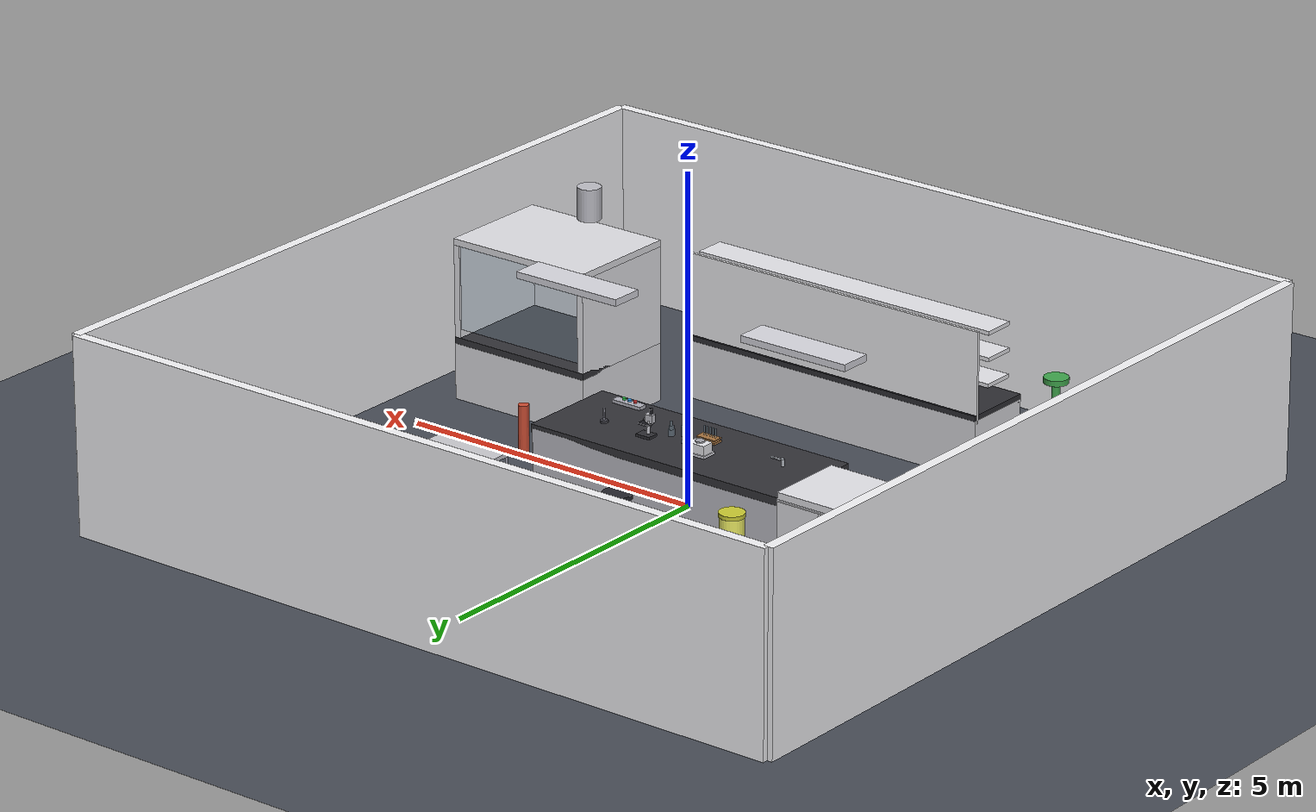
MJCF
<?xml version="1.0" encoding="utf-8"?>
<mujoco model="chemistry_lab_tracer">
  <!-- Tracer base only, no arms -- for driving tests -->
  <include file="../../deps/OpenArm-Combined/Tracer.xml"/>

  <option timestep="0.002" gravity="0 0 -9.81" integrator="implicit"/>
  <size njmax="4000" nconmax="2000"/>
  <visual>
    <headlight ambient="0.35 0.35 0.35" diffuse="0.6 0.6 0.6" specular="0.2 0.2 0.2"/>
    <rgba haze="0.95 0.97 1.0 1"/>
    <quality shadowsize="2048"/>
  </visual>

  <worldbody>
    <!-- Floorremoved--already in robot -->

    <!-- Room boundary (visual walls) -->
    <geom name="wall_n" type="box" pos="0 6 1.5" size="6 0.08 1.5"
          rgba="0.97 0.97 0.98 1" contype="0" conaffinity="0"/>
    <geom name="wall_s" type="box" pos="0 -6 1.5" size="6 0.08 1.5"
          rgba="0.97 0.97 0.98 1" contype="0" conaffinity="0"/>
    <geom name="wall_e" type="box" pos="6 0 1.5" size="0.08 6 1.5"
          rgba="0.97 0.97 0.98 1" contype="0" conaffinity="0"/>
    <geom name="wall_w" type="box" pos="-6 0 1.5" size="0.08 6 1.5"
          rgba="0.97 0.97 0.98 1" contype="0" conaffinity="0"/>

    <!-- Ceiling (visual) -->

    <!-- Overhead lights (visual fixtures) -->
    <body name="light_fixture_1" pos="-2 0 2.88">
      <geom type="box" size="0.9 0.25 0.05" rgba="0.85 0.85 0.88 1" contype="0" conaffinity="0"/>
      <light name="lab_light_1" pos="0 0 -0.05" dir="0 0 -1" directional="true"
             diffuse="1 1 1" specular="0.2 0.2 0.2" castshadow="true"/>
    </body>
    <body name="light_fixture_2" pos="2 0 2.88">
      <geom type="box" size="0.9 0.25 0.05" rgba="0.85 0.85 0.88 1" contype="0" conaffinity="0"/>
      <light name="lab_light_2" pos="0 0 -0.05" dir="0 0 -1" directional="true"
             diffuse="1 1 1" specular="0.2 0.2 0.2" castshadow="true"/>
    </body>

    <!-- Main lab bench -->
    <body name="bench" pos="0 0 0">
      <!-- Bench top -->
      <geom name="bench_top" type="box" pos="0 0 0.9" size="2.2 0.8 0.06"
            rgba="0.20 0.20 0.22 1" friction="1.2 0.01 0.001"/>
      <!-- Bench frame -->
      <geom name="bench_frame_front" type="box" pos="0 0.78 0.45" size="2.18 0.02 0.45"
            rgba="0.75 0.75 0.78 1"/>
      <geom name="bench_frame_back" type="box" pos="0 -0.78 0.45" size="2.18 0.02 0.45"
            rgba="0.75 0.75 0.78 1"/>
      <geom name="bench_frame_left" type="box" pos="-2.18 0 0.45" size="0.02 0.78 0.45"
            rgba="0.75 0.75 0.78 1"/>
      <geom name="bench_frame_right" type="box" pos="2.18 0 0.45" size="0.02 0.78 0.45"
            rgba="0.75 0.75 0.78 1"/>
      <!-- Legs -->
      <geom name="bench_leg_fl" type="box" pos="-2.0 0.7 0.45" size="0.06 0.06 0.45"
            rgba="0.65 0.65 0.68 1"/>
      <geom name="bench_leg_fr" type="box" pos="2.0 0.7 0.45" size="0.06 0.06 0.45"
            rgba="0.65 0.65 0.68 1"/>
      <geom name="bench_leg_bl" type="box" pos="-2.0 -0.7 0.45" size="0.06 0.06 0.45"
            rgba="0.65 0.65 0.68 1"/>
      <geom name="bench_leg_br" type="box" pos="2.0 -0.7 0.45" size="0.06 0.06 0.45"
            rgba="0.65 0.65 0.68 1"/>

      <!-- Sink basin + faucet (integrated on bench) -->
      <geom name="sink_basin_outer" type="box" pos="-1.35 -0.15 0.885" size="0.35 0.25 0.03"
            rgba="0.55 0.57 0.60 1"/>
      <geom name="sink_basin_hole" type="box" pos="-1.35 -0.15 0.87" size="0.30 0.20 0.02"
            rgba="0.18 0.18 0.20 1" contype="0" conaffinity="0"/>
      <geom name="faucet_post" type="cylinder" pos="-1.55 -0.15 0.97" size="0.025 0.10"
            rgba="0.70 0.72 0.75 1"/>
      <geom name="faucet_spout" type="capsule" fromto="-1.55 -0.15 1.05 -1.35 -0.15 1.05"
            size="0.015" rgba="0.70 0.72 0.75 1"/>

      <!-- Gas tap manifold -->
      <geom name="gas_manifold" type="box" pos="1.55 -0.6 0.98" size="0.25 0.07 0.03"
            rgba="0.70 0.70 0.74 1"/>
      <geom name="gas_knob_1" type="cylinder" pos="1.45 -0.62 1.02" size="0.03 0.02"
            rgba="0.85 0.2 0.2 1"/>
      <geom name="gas_knob_2" type="cylinder" pos="1.55 -0.62 1.02" size="0.03 0.02"
            rgba="0.2 0.6 0.9 1"/>
      <geom name="gas_knob_3" type="cylinder" pos="1.65 -0.62 1.02" size="0.03 0.02"
            rgba="0.2 0.8 0.3 1"/>
    </body>

    <!-- Back counter with shelving -->
    <body name="back_counter" pos="0 -3.8 0">
      <geom name="back_counter_top" type="box" pos="0 0 0.92" size="2.6 0.55 0.06"
            rgba="0.18 0.18 0.20 1" friction="1.2 0.01 0.001"/>
      <geom name="back_counter_base" type="box" pos="0 0 0.45" size="2.6 0.55 0.45"
            rgba="0.86 0.86 0.88 1"/>
      <!-- Shelves -->
      <geom name="shelf_1" type="box" pos="0 0 1.35" size="2.6 0.25 0.03"
            rgba="0.90 0.90 0.92 1" contype="0" conaffinity="0"/>
      <geom name="shelf_2" type="box" pos="0 0 1.75" size="2.6 0.25 0.03"
            rgba="0.90 0.90 0.92 1" contype="0" conaffinity="0"/>
      <geom name="shelf_3" type="box" pos="0 0 2.15" size="2.6 0.25 0.03"
            rgba="0.90 0.90 0.92 1" contype="0" conaffinity="0"/>
      <!-- Pegboard -->
      <geom name="pegboard" type="box" pos="0 0.5 1.55" size="2.6 0.02 0.7"
            rgba="0.95 0.95 0.96 1" contype="0" conaffinity="0"/>
    </body>

    <!-- Fume hood -->
    <body name="fume_hood" pos="4.0 -2.0 0">
      <geom name="hood_base" type="box" pos="0 0 0.45" size="1.2 0.9 0.45"
            rgba="0.88 0.88 0.90 1"/>
      <geom name="hood_worktop" type="box" pos="0 0 0.92" size="1.2 0.9 0.05"
            rgba="0.20 0.20 0.22 1"/>
      <geom name="hood_back" type="box" pos="0 -0.85 1.65" size="1.2 0.05 0.75"
            rgba="0.90 0.90 0.92 1" contype="0" conaffinity="0"/>
      <geom name="hood_sides_l" type="box" pos="-1.15 0 1.65" size="0.05 0.9 0.75"
            rgba="0.90 0.90 0.92 1" contype="0" conaffinity="0"/>
      <geom name="hood_sides_r" type="box" pos="1.15 0 1.65" size="0.05 0.9 0.75"
            rgba="0.90 0.90 0.92 1" contype="0" conaffinity="0"/>
      <geom name="hood_top" type="box" pos="0 0 2.45" size="1.2 0.9 0.05"
            rgba="0.88 0.88 0.90 1" contype="0" conaffinity="0"/>
      <!-- Front sash (glass) -->
      <geom name="hood_sash" type="box" pos="0 0.85 1.75" size="1.18 0.02 0.65"
            rgba="0.70 0.85 0.95 0.25" contype="0" conaffinity="0"/>
      <!-- Duct -->
      <geom name="hood_duct" type="cylinder" pos="0 -0.75 2.85" size="0.18 0.25"
            rgba="0.75 0.75 0.78 1" contype="0" conaffinity="0"/>
    </body>

    <!-- Emergency shower / eyewash station -->
    <body name="safety_station" pos="-4.5 -2.5 0">
      <geom name="safety_post" type="cylinder" pos="0 0 1.1" size="0.06 1.1"
            rgba="0.25 0.65 0.30 1"/>
      <geom name="shower_head" type="cylinder" pos="0 0 2.25" size="0.18 0.04"
            rgba="0.25 0.65 0.30 1" contype="0" conaffinity="0"/>
      <geom name="eyewash_bowl" type="cylinder" pos="0 0 1.0" size="0.20 0.05"
            rgba="0.25 0.65 0.30 1"/>
      <geom name="eyewash_nozzle_l" type="sphere" pos="-0.06 0 1.08" size="0.03"
            rgba="0.10 0.40 0.85 1" contype="0" conaffinity="0"/>
      <geom name="eyewash_nozzle_r" type="sphere" pos="0.06 0 1.08" size="0.03"
            rgba="0.10 0.40 0.85 1" contype="0" conaffinity="0"/>
      <geom name="pull_handle" type="capsule" fromto="0 0.15 1.65 0 0.15 1.25"
            size="0.02" rgba="0.85 0.85 0.10 1" contype="0" conaffinity="0"/>
    </body>

    <!-- Fire extinguisher (movable) -->
    <body name="fire_extinguisher" pos="-4.2 -1.6 0.15">
      <freejoint/>
      <geom name="ext_body" type="cylinder" pos="0 0 0.25" size="0.08 0.25"
            rgba="0.85 0.10 0.10 1" friction="0.9 0.01 0.001" density="700"/>
      <geom name="ext_neck" type="cylinder" pos="0 0 0.53" size="0.04 0.05"
            rgba="0.75 0.75 0.78 1" density="700"/>
      <geom name="ext_handle" type="box" pos="0 0.05 0.60" size="0.08 0.02 0.02"
            rgba="0.10 0.10 0.10 1" density="500"/>
      <geom name="ext_hose" type="capsule" fromto="0.05 0.0 0.58 0.16 0.08 0.48"
            size="0.015" rgba="0.10 0.10 0.10 1" density="400"/>
    </body>

    <!-- Lab stool (movable) -->
    <body name="lab_stool" pos="0.0 1.6 0.25">
      <freejoint/>
      <geom name="stool_seat" type="cylinder" pos="0 0 0.45" size="0.22 0.04"
            rgba="0.15 0.15 0.18 1" density="500"/>
      <geom name="stool_post" type="cylinder" pos="0 0 0.23" size="0.03 0.23"
            rgba="0.65 0.65 0.68 1" density="700"/>
      <geom name="stool_base_1" type="capsule" fromto="0 0 0.05 0.25 0 0.05"
            size="0.02" rgba="0.65 0.65 0.68 1" density="700"/>
      <geom name="stool_base_2" type="capsule" fromto="0 0 0.05 -0.25 0 0.05"
            size="0.02" rgba="0.65 0.65 0.68 1" density="700"/>
      <geom name="stool_base_3" type="capsule" fromto="0 0 0.05 0 0.25 0.05"
            size="0.02" rgba="0.65 0.65 0.68 1" density="700"/>
      <geom name="stool_base_4" type="capsule" fromto="0 0 0.05 0 -0.25 0.05"
            size="0.02" rgba="0.65 0.65 0.68 1" density="700"/>
    </body>

    <!-- Microscope (movable) -->
    <body name="microscope" pos="0.6 0.2 0.98">
      <freejoint/>
      <geom name="micro_base" type="box" pos="0 0 0.02" size="0.12 0.09 0.02"
            rgba="0.18 0.18 0.20 1" density="800"/>
      <geom name="micro_arm" type="capsule" fromto="-0.02 -0.02 0.04 -0.02 -0.04 0.22"
            size="0.025" rgba="0.75 0.75 0.78 1" density="800"/>
      <geom name="micro_body" type="box" pos="-0.02 -0.06 0.26" size="0.06 0.04 0.06"
            rgba="0.75 0.75 0.78 1" density="800"/>
      <geom name="micro_head" type="cylinder" pos="-0.02 -0.08 0.34" size="0.03 0.06"
            rgba="0.10 0.10 0.12 1" density="700"/>
      <geom name="micro_stage" type="box" pos="0.03 -0.02 0.18" size="0.09 0.06 0.01"
            rgba="0.10 0.10 0.12 1" density="700"/>
      <geom name="micro_knob" type="sphere" pos="0.08 -0.06 0.22" size="0.02"
            rgba="0.20 0.20 0.22 1" density="500"/>
    </body>

    <!-- Balance scale (movable) -->
    <body name="balance_scale" pos="-0.4 0.25 0.98">
      <freejoint/>
      <geom name="scale_base" type="box" pos="0 0 0.02" size="0.16 0.12 0.02"
            rgba="0.85 0.85 0.88 1" density="900"/>
      <geom name="scale_body" type="box" pos="0 0 0.10" size="0.14 0.10 0.08"
            rgba="0.92 0.92 0.94 1" density="900"/>
      <geom name="scale_pan" type="cylinder" pos="0 0 0.20" size="0.07 0.01"
            rgba="0.65 0.65 0.68 1" density="700"/>
      <geom name="scale_screen" type="box" pos="0.06 0.0 0.14" size="0.03 0.05 0.02"
            rgba="0.10 0.15 0.20 1" density="700"/>
    </body>

    <!-- Test tube rack (movable) -->
    <body name="test_tube_rack" pos="-0.2 -0.2 0.98">
      <freejoint/>
      <geom name="rack_base" type="box" pos="0 0 0.015" size="0.16 0.08 0.015"
            rgba="0.65 0.45 0.25 1" density="700"/>
      <geom name="rack_top" type="box" pos="0 0 0.06" size="0.16 0.08 0.01"
            rgba="0.65 0.45 0.25 1" density="700"/>
      <!-- Test tubes (thin cylinders) -->
      <geom name="tube_1" type="cylinder" pos="-0.10 -0.03 0.13" size="0.012 0.07"
            rgba="0.70 0.90 1.00 0.25" density="400"/>
      <geom name="tube_2" type="cylinder" pos="-0.05 -0.03 0.13" size="0.012 0.07"
            rgba="0.70 0.90 1.00 0.25" density="400"/>
      <geom name="tube_3" type="cylinder" pos="0.00 -0.03 0.13" size="0.012 0.07"
            rgba="0.70 0.90 1.00 0.25" density="400"/>
      <geom name="tube_4" type="cylinder" pos="0.05 -0.03 0.13" size="0.012 0.07"
            rgba="0.70 0.90 1.00 0.25" density="400"/>
      <geom name="tube_5" type="cylinder" pos="0.10 -0.03 0.13" size="0.012 0.07"
            rgba="0.70 0.90 1.00 0.25" density="400"/>
      <!-- Colored liquid (visual-only inserts) -->
      <geom name="tube_1_liquid" type="cylinder" pos="-0.10 -0.03 0.105" size="0.010 0.035"
            rgba="0.20 0.60 0.95 0.55" contype="0" conaffinity="0"/>
      <geom name="tube_2_liquid" type="cylinder" pos="-0.05 -0.03 0.095" size="0.010 0.025"
            rgba="0.95 0.35 0.20 0.55" contype="0" conaffinity="0"/>
      <geom name="tube_3_liquid" type="cylinder" pos="0.00 -0.03 0.11" size="0.010 0.04"
            rgba="0.25 0.85 0.35 0.55" contype="0" conaffinity="0"/>
    </body>

    <!-- Beaker (movable) -->
    <body name="beaker" pos="0.2 -0.15 0.98">
      <freejoint/>
      <geom name="beaker_glass" type="cylinder" pos="0 0 0.07" size="0.045 0.07"
            rgba="0.70 0.90 1.00 0.25" density="400" friction="0.6 0.01 0.001"/>
      <geom name="beaker_liquid" type="cylinder" pos="0 0 0.045" size="0.043 0.04"
            rgba="0.15 0.55 0.95 0.6" contype="0" conaffinity="0"/>
    </body>

    <!-- Erlenmeyer flask (approximated with stacked cylinders; movable) -->
    <body name="erlenmeyer_flask" pos="0.35 -0.05 0.98">
      <freejoint/>
      <geom name="flask_base" type="cylinder" pos="0 0 0.045" size="0.05 0.045"
            rgba="0.70 0.90 1.00 0.25" density="400"/>
      <geom name="flask_mid" type="cylinder" pos="0 0 0.095" size="0.035 0.05"
            rgba="0.70 0.90 1.00 0.25" density="400"/>
      <geom name="flask_neck" type="cylinder" pos="0 0 0.155" size="0.018 0.06"
            rgba="0.70 0.90 1.00 0.25" density="400"/>
      <geom name="flask_liquid" type="cylinder" pos="0 0 0.04" size="0.045 0.03"
            rgba="0.85 0.25 0.65 0.6" contype="0" conaffinity="0"/>
    </body>

    <!-- Graduated cylinder (movable) -->
    <body name="graduated_cylinder" pos="0.05 0.05 0.98">
      <freejoint/>
      <geom name="grad_cyl_body" type="cylinder" pos="0 0 0.11" size="0.018 0.11"
            rgba="0.70 0.90 1.00 0.25" density="400"/>
      <geom name="grad_cyl_base" type="cylinder" pos="0 0 0.01" size="0.04 0.01"
            rgba="0.70 0.90 1.00 0.25" density="400"/>
      <geom name="grad_cyl_liquid" type="cylinder" pos="0 0 0.07" size="0.016 0.06"
            rgba="0.95 0.80 0.20 0.6" contype="0" conaffinity="0"/>
    </body>

    <!-- Bunsen burner (movable) -->
    <body name="bunsen_burner" pos="1.4 0.15 0.98">
      <freejoint/>
      <geom name="burner_base" type="cylinder" pos="0 0 0.015" size="0.06 0.015"
            rgba="0.25 0.25 0.28 1" density="900"/>
      <geom name="burner_tube" type="cylinder" pos="0 0 0.11" size="0.015 0.10"
            rgba="0.60 0.60 0.65 1" density="900"/>
      <geom name="burner_collar" type="cylinder" pos="0 0 0.06" size="0.02 0.02"
            rgba="0.45 0.45 0.50 1" density="900"/>
      <light name="burner_glow" pos="0 0 0.23" dir="0 0 1" directional="false"
             diffuse="0.2 0.35 0.9" specular="0 0 0" attenuation="0.6 0.1 0.02"/>
    </body>

    <!-- Chemical waste bin (movable) -->
    <body name="waste_bin" pos="-1.7 1.2 0.2">
      <freejoint/>
      <geom name="bin_body" type="cylinder" pos="0 0 0.25" size="0.18 0.25"
            rgba="0.95 0.95 0.40 1" density="600"/>
      <geom name="bin_lid" type="cylinder" pos="0 0 0.53" size="0.19 0.03"
            rgba="0.80 0.80 0.20 1" density="600"/>
    </body>

    <!-- Refrigerator / chemical storage cabinet -->
    <body name="storage_cabinet" pos="-4.4 2.2 0">
      <geom name="cab_body" type="box" pos="0 0 1.0" size="0.7 0.6 1.0"
            rgba="0.92 0.92 0.94 1"/>
      <geom name="cab_door_left" type="box" pos="-0.34 0.61 1.0" size="0.34 0.02 0.98"
            rgba="0.88 0.88 0.90 1" contype="0" conaffinity="0"/>
      <geom name="cab_door_right" type="box" pos="0.34 0.61 1.0" size="0.34 0.02 0.98"
            rgba="0.88 0.88 0.90 1" contype="0" conaffinity="0"/>
      <geom name="cab_handle_l" type="capsule" fromto="-0.55 0.64 1.15 -0.55 0.64 0.85"
            size="0.015" rgba="0.65 0.65 0.68 1" contype="0" conaffinity="0"/>
      <geom name="cab_handle_r" type="capsule" fromto="0.55 0.64 1.15 0.55 0.64 0.85"
            size="0.015" rgba="0.65 0.65 0.68 1" contype="0" conaffinity="0"/>
      <geom name="cab_top" type="box" pos="0 0 2.05" size="0.7 0.6 0.05"
            rgba="0.90 0.90 0.92 1" contype="0" conaffinity="0"/>
    </body>

    <!-- Rolling cart (movable) -->
    <body name="rolling_cart" pos="2.5 2.0 0">
      <freejoint/>
      <geom name="cart_top" type="box" pos="0 0 0.85" size="0.6 0.4 0.03"
            rgba="0.80 0.80 0.82 1" density="500"/>
      <geom name="cart_shelf" type="box" pos="0 0 0.45" size="0.6 0.4 0.02"
            rgba="0.80 0.80 0.82 1" density="500"/>
      <geom name="cart_leg_1" type="cylinder" pos="-0.55 -0.35 0.42" size="0.02 0.42"
            rgba="0.60 0.60 0.65 1" density="700"/>
      <geom name="cart_leg_2" type="cylinder" pos="0.55 -0.35 0.42" size="0.02 0.42"
            rgba="0.60 0.60 0.65 1" density="700"/>
      <geom name="cart_leg_3" type="cylinder" pos="-0.55 0.35 0.42" size="0.02 0.42"
            rgba="0.60 0.60 0.65 1" density="700"/>
      <geom name="cart_leg_4" type="cylinder" pos="0.55 0.35 0.42" size="0.02 0.42"
            rgba="0.60 0.60 0.65 1" density="700"/>
      <geom name="cart_wheel_1" type="cylinder" pos="-0.55 -0.35 0.05" size="0.06 0.02"
            rgba="0.12 0.12 0.12 1" density="800"/>
      <geom name="cart_wheel_2" type="cylinder" pos="0.55 -0.35 0.05" size="0.06 0.02"
            rgba="0.12 0.12 0.12 1" density="800"/>
      <geom name="cart_wheel_3" type="cylinder" pos="-0.55 0.35 0.05" size="0.06 0.02"
            rgba="0.12 0.12 0.12 1" density="800"/>
      <geom name="cart_wheel_4" type="cylinder" pos="0.55 0.35 0.05" size="0.06 0.02"
            rgba="0.12 0.12 0.12 1" density="800"/>
    </body>

    <!-- Small chemical bottles on the back shelves (static, visual) -->
    <body name="shelf_bottles" pos="0 -3.8 0">
      <geom name="bottle_1" type="cylinder" pos="-1.6 0.15 1.44" size="0.04 0.10"
            rgba="0.95 0.85 0.20 0.6" contype="0" conaffinity="0"/>
      <geom name="bottle_1_cap" type="cylinder" pos="-1.6 0.15 1.56" size="0.03 0.02"
            rgba="0.10 0.10 0.12 1" contype="0" conaffinity="0"/>

      <geom name="bottle_2" type="cylinder" pos="-1.2 0.15 1.44" size="0.04 0.10"
            rgba="0.20 0.85 0.35 0.55" contype="0" conaffinity="0"/>
      <geom name="bottle_2_cap" type="cylinder" pos="-1.2 0.15 1.56" size="0.03 0.02"
            rgba="0.10 0.10 0.12 1" contype="0" conaffinity="0"/>

      <geom name="bottle_3" type="cylinder" pos="-0.8 0.15 1.44" size="0.04 0.10"
            rgba="0.25 0.55 0.95 0.55" contype="0" conaffinity="0"/>
      <geom name="bottle_3_cap" type="cylinder" pos="-0.8 0.15 1.56" size="0.03 0.02"
            rgba="0.10 0.10 0.12 1" contype="0" conaffinity="0"/>

      <geom name="bottle_4" type="cylinder" pos="0.8 0.15 1.84" size="0.035 0.09"
            rgba="0.95 0.55 0.20 0.55" contype="0" conaffinity="0"/>
      <geom name="bottle_4_cap" type="cylinder" pos="0.8 0.15 1.95" size="0.028 0.02"
            rgba="0.10 0.10 0.12 1" contype="0" conaffinity="0"/>

      <geom name="bottle_5" type="cylinder" pos="1.2 0.15 1.84" size="0.035 0.09"
            rgba="0.85 0.25 0.65 0.55" contype="0" conaffinity="0"/>
      <geom name="bottle_5_cap" type="cylinder" pos="1.2 0.15 1.95" size="0.028 0.02"
            rgba="0.10 0.10 0.12 1" contype="0" conaffinity="0"/>
    </body>

    <!-- Camera -->
      <camera name="main_cam" pos="3 3 2.0" mode="targetbody" target="base_link"/>
    </worldbody>

</mujoco>

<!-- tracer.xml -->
<mujoco model="tracer">

  <compiler angle="radian" autolimits="true"/>
  <option timestep="0.002" integrator="implicitfast"/>

  <visual>
    <quality offsamples="0"/>
    <headlight diffuse="0.6 0.6 0.6" ambient="0.3 0.3 0.3"/>
    <global azimuth="130" elevation="-25"/>
  </visual>

  <default>
    <default class="wheel">
      <!-- friction = sliding, torsional, rolling -->
      <geom type="cylinder" size="0.08" rgba="0.15 0.15 0.15 1"
            friction="1.5 0.005 0.0001"/>
      <joint type="hinge" axis="0 1 0" damping="0.05" armature="0.01"/>
    </default>
    <default class="caster">
      <!-- Real swivelling casters chatter badly in MuJoCo. These are
           near-frictionless spheres: same support, no jitter, and the
           base still cannot strafe because the driven wheels grip. -->
      <geom type="sphere" size="0.035" rgba="0.55 0.55 0.55 1"
            friction="0.0005 0.0005 0.00001"/>
    </default>
  </default>

  <worldbody>
    <light pos="0 0 3" dir="0 0 -1" diffuse="0.8 0.8 0.8"/>

    <geom name="floor" type="plane" size="25 25 0.1"
          rgba="0.28 0.30 0.34 1" friction="1.0 0.005 0.0001"/>

    <!-- a couple of landmarks so motion is visible in the viewer -->
    <geom name="post_a" type="cylinder" pos="3 0 0.4" size="0.08 0.4" rgba="0.8 0.3 0.2 1"/>
    <geom name="post_b" type="cylinder" pos="0 3 0.4" size="0.08 0.4" rgba="0.2 0.6 0.8 1"/>
    <geom name="post_c" type="cylinder" pos="-3 -2 0.4" size="0.08 0.4" rgba="0.3 0.7 0.4 1"/>

    <!-- base sits at z = wheel radius so the wheels touch the floor -->
    <body name="base_link" pos="0 0 0.08">
      <freejoint name="base_free"/>
      <inertial pos="0 0 0.02" mass="30" diaginertia="0.9 1.2 1.6"/>

      <geom name="chassis" type="box" pos="0 0 0.0175"
            size="0.3425 0.285 0.0775" rgba="0.85 0.45 0.10 1"/>
      <!-- small nose marker so you can tell which way is forward -->
      <geom name="nose" type="box" pos="0.33 0 0.0175"
            size="0.02 0.06 0.03" rgba="0.95 0.95 0.95 1"/>

      <body name="left_wheel_link" pos="0 0.20 0">
        <joint name="left_wheel" class="wheel"/>
        <geom class="wheel" fromto="0 -0.025 0 0 0.025 0"/>
      </body>

      <body name="right_wheel_link" pos="0 -0.20 0">
        <joint name="right_wheel" class="wheel"/>
        <geom class="wheel" fromto="0 -0.025 0 0 0.025 0"/>
      </body>

      <geom name="caster_fl" class="caster" pos=" 0.26  0.20 -0.045"/>
      <geom name="caster_fr" class="caster" pos=" 0.26 -0.20 -0.045"/>
      <geom name="caster_rl" class="caster" pos="-0.26  0.20 -0.045"/>
      <geom name="caster_rr" class="caster" pos="-0.26 -0.20 -0.045"/>
    </body>
  </worldbody>

  <actuator>
    <velocity name="left_wheel_vel"  joint="left_wheel"  kv="25" ctrlrange="-40 40"/>
    <velocity name="right_wheel_vel" joint="right_wheel" kv="25" ctrlrange="-40 40"/>
  </actuator>
</mujoco>
